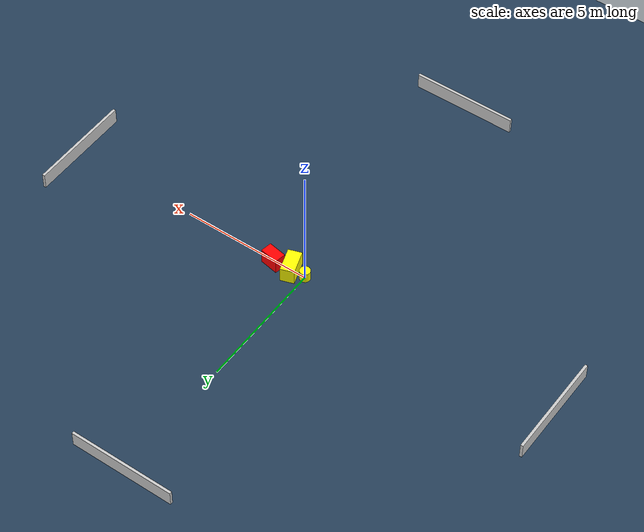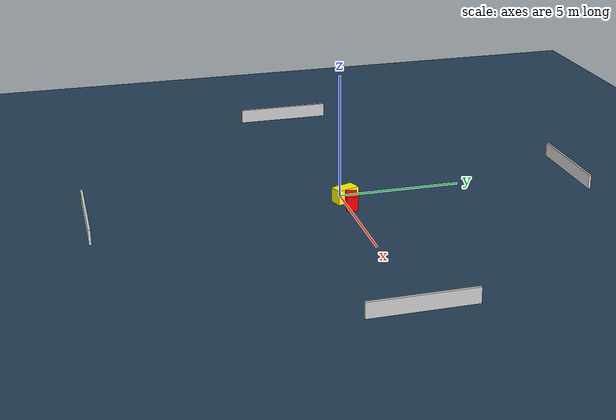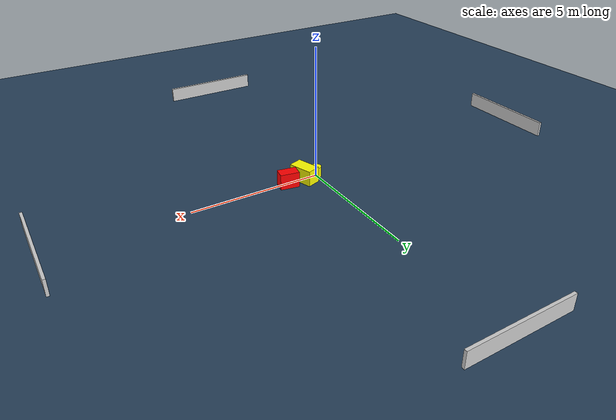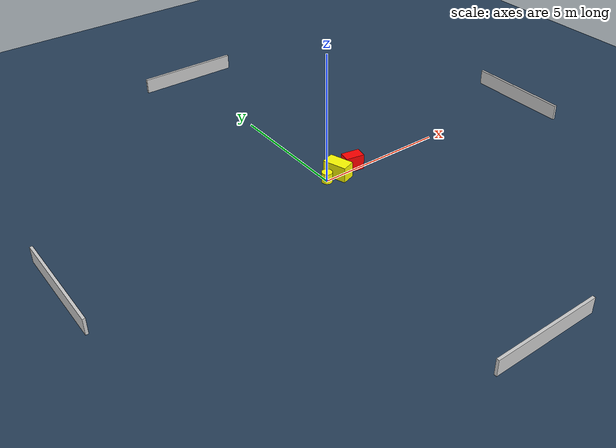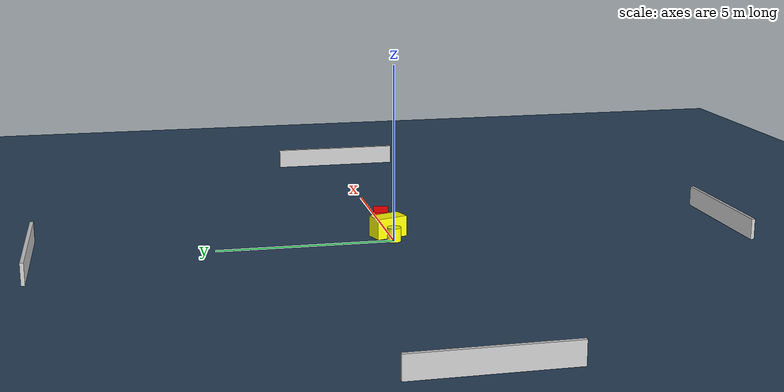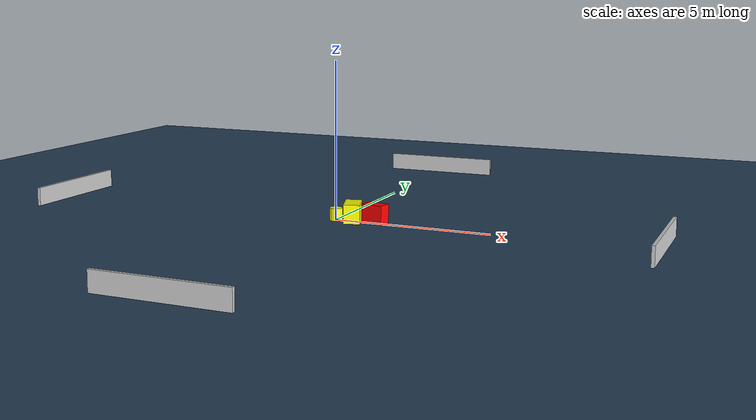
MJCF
<?xml version="1.0" ?>
<mujoco model="generated_environment">
  <option timestep="0.01" integrator="RK4" cone="elliptic"/>
  <default>
    <geom density="1"/>
  </default>
  <asset>
    <texture builtin="gradient" height="3072" name="skybox" rgb1="0.3 0.5 0.7" rgb2="0 0 0" type="skybox" width="512"/>
    <texture builtin="checker" height="300" name="groundplane" rgb1="0.2 0.3 0.4" rgb2="0.1 0.2 0.3" type="2d" width="300"/>
    <material name="groundplane" reflectance="0.2" texrepeat="5 5" texture="groundplane"/>
  </asset>
  <worldbody>
    <light dir="0 0 -1" directional="true" pos="0 0 1.5"/>
    <geom condim="3" friction="0.5 0.005 0.001" material="groundplane" name="floor" pos="0 0 0" size="0 0 0.05" type="plane"/>
    <body name="walls">
      <geom name="wall_1" condim="4" pos="-10.0 0.0 0.3" rgba="0.800000011920929 0.800000011920929 0.800000011920929 1.0" size="0.05 2.0 0.3" type="box"/>
      <geom name="wall_2" condim="4" pos="10.0 0.0 0.3" rgba="0.800000011920929 0.800000011920929 0.800000011920929 1.0" size="0.05 2.0 0.3" type="box"/>
      <geom name="wall_3" condim="4" pos="0.0 -10.0 0.3" rgba="0.800000011920929 0.800000011920929 0.800000011920929 1.0" size="2.0 0.05 0.3" type="box"/>
      <geom name="wall_4" condim="4" pos="0.0 10.0 0.3" rgba="0.800000011920929 0.800000011920929 0.800000011920929 1.0" size="2.0 0.05 0.3" type="box"/>
    </body>
    <body name="robot">
      <joint name="joint_x" type="slide" pos="0 0 0" axis="1 0 0"/>
      <joint name="joint_y" type="slide" pos="0 0 0" axis="0 1 0"/>
      <geom name="robot" type="cylinder" pos="0.0 0.0 0.2" size="0.2 0.2 0.0" mass="5.0" friction="1.0 0.005 0.0001" condim="4" rgba="1.0 1.0 0.0 1.0"/>
    </body>
    <body name="obstacle_1_movable">
      <geom name="obstacle_1_movable" condim="4" pos="0.5433137760017304 0.0632767838618486 0.3" euler="0 0 198.39364253338974" friction="0.0 0.005 0.001" rgba="1.0 1.0 0.0 1.0" size="0.25986592927457575 0.46625777899854987 0.3" type="box" mass="0.1"/>
      <joint type="free"/>
    </body>
    <body name="obstacle_2_static">
      <geom name="obstacle_2_static" condim="4" pos="1.2658276843107243 0.12329536359523915 0.3" euler="0 0 349.8060557902987" friction="0.0 0.005 0.001" rgba="1.0 0.0 0.0 1.0" size="0.35710718338435493 0.21732773050552168 0.3" type="box"/>
    </body>
  </worldbody>
  <actuator>
    <motor name="actuator_x" joint="joint_x" gear="1" ctrlrange="-1 1"/>
    <motor name="actuator_y" joint="joint_y" gear="1" ctrlrange="-1 1"/>
  </actuator>
</mujoco>
